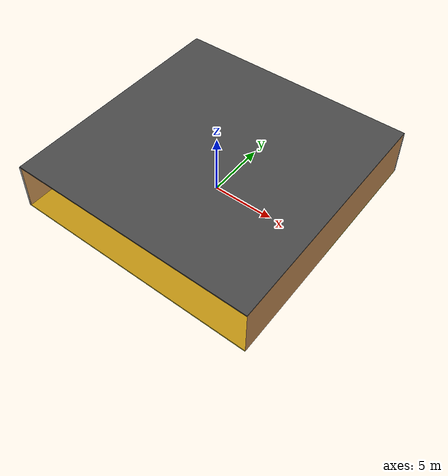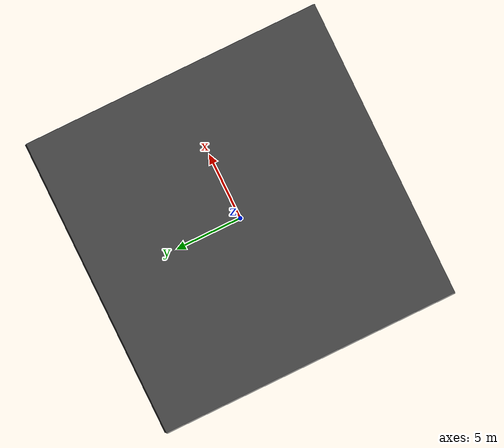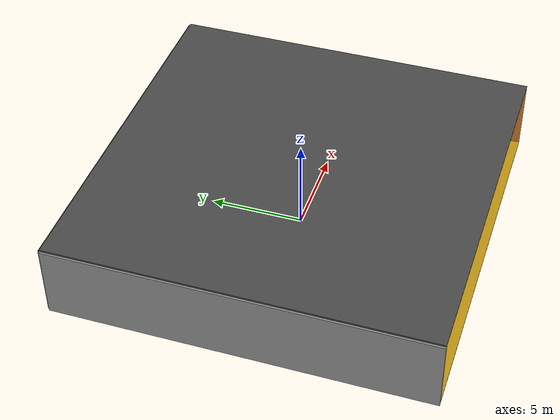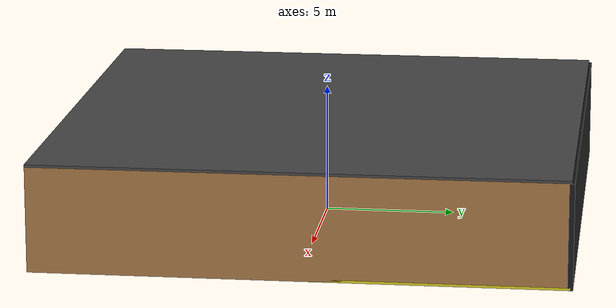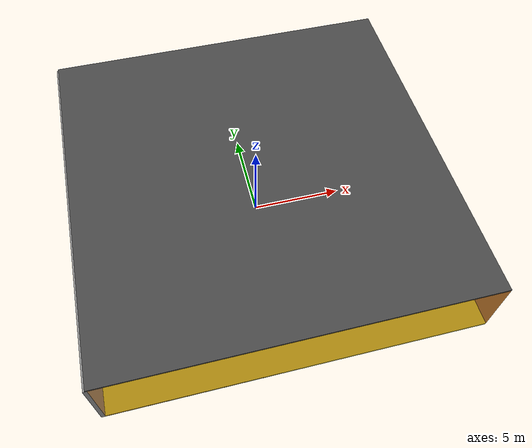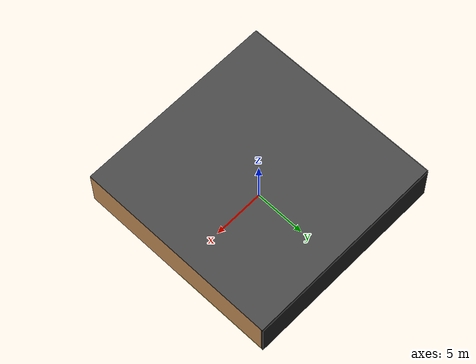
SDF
<sdf version="1.4">
 <world name="default">
  <physics type="ode">
   <max_step_size>0.001</max_step_size>
   <real_time_factor>1</real_time_factor>
   <real_time_update_rate>1000</real_time_update_rate>
   <gravity>0 0 -9.8</gravity>
  </physics>
  <scene><ambient>0.4 0.4 0.4 1</ambient><background>0.7 0.7 0.7 1</background><shadows>1</shadows></scene>
  <model name="Surrounding">
   <static>1</static>
   <link name="Ceiling">
    <collision name="Ceiling_Collision"><geometry><box><size>20 20 0.1</size></box></geometry></collision>
    <visual name="Ceiling_Visual">
     <geometry><box><size>20 20 0.1</size></box></geometry>
     <material>
      <script><uri>file://media/materials/scripts/gazebo.material</uri><name>Gazebo/DarkGrey</name></script>
     </material>
    </visual>
    <pose>0 0 4.05 0 0 0</pose>
   </link>
   <link name="Wall_South">
    <collision name="Wall_South_Collision">
     <geometry><box><size>20 0 4</size></box></geometry>
     <pose>0 0 2 0 -0 0</pose>
    </collision>
    <visual name="Wall_South_Visual">
     <pose>0 0 2 0 -0 0</pose>
     <geometry><box><size>20 0 4</size></box></geometry>
     <material>
      <script>
       <uri>file://media/materials/scripts/gazebo.material</uri>
       <name>Gazebo/OrangeTransparent</name>
      </script>
     </material>
    </visual>
    <velocity_decay><linear>0</linear><angular>0</angular></velocity_decay>
    <pose>0 -10 0 0 -0 0</pose>
   </link>
   <link name="Wall_East">
    <collision name="Wall_21_Collision">
     <geometry><box><size>20 0 4</size></box></geometry>
     <pose>0 0 2 0 -0 0</pose>
    </collision>
    <visual name="Wall_21_Visual">
     <pose>0 0 2 0 -0 0</pose>
     <geometry><box><size>20 0 4</size></box></geometry>
     <material>
      <script><uri>file://media/materials/scripts/gazebo.material</uri><name>Gazebo/WoodPallet</name></script>
     </material>
    </visual>
    <velocity_decay><linear>0</linear><angular>0</angular></velocity_decay>
    <pose>10 0 0 0 -0 1.5708</pose>
   </link>
   <link name="Wall_North">
    <collision name="Wall_22_Collision">
     <geometry><box><size>20 0.2 4</size></box></geometry>
     <pose>0 0 2 0 -0 0</pose>
    </collision>
    <visual name="Wall_22_Visual">
     <pose>0 0 2 0 -0 0</pose>
     <geometry><box><size>20 0.2 4</size></box></geometry>
     <material>
      <script><uri>file://media/materials/scripts/gazebo.material</uri><name>Gazebo/Black</name></script>
     </material>
    </visual>
    <velocity_decay><linear>0</linear><angular>0</angular></velocity_decay>
    <pose>0 10 0 0 -0 0</pose>
   </link>
   <link name="Wall_West">
    <collision name="Wall_23_Collision">
     <geometry><box><size>20 0.2 4</size></box></geometry>
     <pose>0 0 2 0 -0 0</pose>
    </collision>
    <visual name="Wall_23_Visual">
     <pose>0 0 2 0 -0 0</pose>
     <geometry><box><size>20 0.2 4</size></box></geometry>
     <material>
      <script><uri>file://media/materials/scripts/gazebo.material</uri><name>Gazebo/Grey</name></script>
     </material>
    </visual>
    <velocity_decay><linear>0</linear><angular>0</angular></velocity_decay>
    <pose>-10 0 0 0 0 -1.5708</pose>
   </link>
   <link name="Ground_link">
    <collision name="collision">
     <pose>0 0 .05 0 -0 0</pose>
     <geometry><box><size>20 20 0.1</size></box></geometry>
    </collision>
    <visual name="visual">
     <pose>0 0 .05 0 -0 0</pose>
     <geometry><box><size>20 20 0.1</size></box></geometry>
     <material>
      <script><uri>file://media/materials/scripts/gazebo.material</uri><name>Gazebo/Yellow</name></script>
     </material>
    </visual>
   </link>
   <static>1</static>
  </model>
  <spherical_coordinates>
   <surface_model>EARTH_WGS84</surface_model>
   <latitude_deg>0</latitude_deg>
   <longitude_deg>0</longitude_deg>
   <elevation>0</elevation>
   <heading_deg>0</heading_deg>
  </spherical_coordinates>
  <light name="lightball_0" type="diffuse">
   <diffuse>0.8 0.8 0.8 1</diffuse>
   <specular>0.2 0.2 0.2 1</specular>
   <attenuation>
    <range>100</range>
    <constant>0.7</constant>
    <linear>0.01</linear>
    <quadratic>0.001</quadratic>
   </attenuation>
   <direction>-0.5 0.1 -0.9</direction>
   <pose>-6.50652014906 -8.2845147694 3.37497500309 0 0 0</pose>
  </light>
  <light name="lightball_1" type="diffuse">
   <diffuse>0.8 0.8 0.8 1</diffuse>
   <specular>0.2 0.2 0.2 1</specular>
   <attenuation>
    <range>100</range>
    <constant>0.7</constant>
    <linear>0.01</linear>
    <quadratic>0.001</quadratic>
   </attenuation>
   <direction>-0.5 0.1 -0.9</direction>
   <pose>-7.29154338241 -5.59549850908 1.78336800229 0 0 0</pose>
  </light>
  <light name="lightball_2" type="diffuse">
   <diffuse>0.8 0.8 0.8 1</diffuse>
   <specular>0.2 0.2 0.2 1</specular>
   <attenuation>
    <range>100</range>
    <constant>0.7</constant>
    <linear>0.01</linear>
    <quadratic>0.001</quadratic>
   </attenuation>
   <direction>-0.5 0.1 -0.9</direction>
   <pose>9.59259451905 1.66989332023 3.5223220656 0 0 0</pose>
  </light>
  <light name="lightball_3" type="diffuse">
   <diffuse>0.8 0.8 0.8 1</diffuse>
   <specular>0.2 0.2 0.2 1</specular>
   <attenuation>
    <range>100</range>
    <constant>0.7</constant>
    <linear>0.01</linear>
    <quadratic>0.001</quadratic>
   </attenuation>
   <direction>-0.5 0.1 -0.9</direction>
   <pose>1.82961315115 7.67548273522 0.69595505541 0 0 0</pose>
  </light>
  <light name="lightball_4" type="diffuse">
   <diffuse>0.8 0.8 0.8 1</diffuse>
   <specular>0.2 0.2 0.2 1</specular>
   <attenuation>
    <range>100</range>
    <constant>0.7</constant>
    <linear>0.01</linear>
    <quadratic>0.001</quadratic>
   </attenuation>
   <direction>-0.5 0.1 -0.9</direction>
   <pose>2.12658770777 -4.14086529866 2.65414830989 0 0 0</pose>
  </light>
  <light name="lightball_5" type="diffuse">
   <diffuse>0.8 0.8 0.8 1</diffuse>
   <specular>0.2 0.2 0.2 1</specular>
   <attenuation>
    <range>100</range>
    <constant>0.7</constant>
    <linear>0.01</linear>
    <quadratic>0.001</quadratic>
   </attenuation>
   <direction>-0.5 0.1 -0.9</direction>
   <pose>5.14593592658 8.64537085771 1.26262068492 0 0 0</pose>
  </light>
  <light name="lightball_6" type="diffuse">
   <diffuse>0.8 0.8 0.8 1</diffuse>
   <specular>0.2 0.2 0.2 1</specular>
   <attenuation>
    <range>100</range>
    <constant>0.7</constant>
    <linear>0.01</linear>
    <quadratic>0.001</quadratic>
   </attenuation>
   <direction>-0.5 0.1 -0.9</direction>
   <pose>-0.203051433288 8.33700694688 3.11445148527 0 0 0</pose>
  </light>
  <light name="lightball_7" type="diffuse">
   <diffuse>0.8 0.8 0.8 1</diffuse>
   <specular>0.2 0.2 0.2 1</specular>
   <attenuation>
    <range>100</range>
    <constant>0.7</constant>
    <linear>0.01</linear>
    <quadratic>0.001</quadratic>
   </attenuation>
   <direction>-0.5 0.1 -0.9</direction>
   <pose>6.12760891448 9.51713039501 1.58418428032 0 0 0</pose>
  </light>
  <light name="lightball_8" type="diffuse">
   <diffuse>0.8 0.8 0.8 1</diffuse>
   <specular>0.2 0.2 0.2 1</specular>
   <attenuation>
    <range>100</range>
    <constant>0.7</constant>
    <linear>0.01</linear>
    <quadratic>0.001</quadratic>
   </attenuation>
   <direction>-0.5 0.1 -0.9</direction>
   <pose>-7.83294923828 -8.01579270676 1.35529472022 0 0 0</pose>
  </light>
  <light name="lightball_9" type="diffuse">
   <diffuse>0.8 0.8 0.8 1</diffuse>
   <specular>0.2 0.2 0.2 1</specular>
   <attenuation>
    <range>100</range>
    <constant>0.7</constant>
    <linear>0.01</linear>
    <quadratic>0.001</quadratic>
   </attenuation>
   <direction>-0.5 0.1 -0.9</direction>
   <pose>3.3715502861 -0.938587595957 3.45811030733 0 0 0</pose>
  </light>
  <include><uri>model://cabinet</uri><pose>-8.42441849845 3.32208731031 0 0 0 0.907002146369</pose></include>
  <include>
   <uri>model://construction_cone</uri>
   <pose>3.50917620084 0.825705982715 0 0 0 1.08355189449</pose>
  </include>
  <include><uri>model://cabinet</uri><pose>3.48773045439 8.62084431538 0 0 0 2.90363848855</pose></include>
  <include>
   <uri>model://robocup_3Dsim_goal</uri>
   <pose>8.21208306971 1.51543397599 0 0 0 0.399624393309</pose>
  </include>
 </world>
</sdf>

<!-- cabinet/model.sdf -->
<sdf version="1.5">
  <model name="cabinet">
    <static>true</static>
    <link name="cabinet_bottom_plate">
      <inertial>
        <pose>0 0 -1 0 0 0</pose>
        <inertia>
          <ixx>2.050000</ixx>
          <ixy>0</ixy>
          <ixz>0</ixz>
          <iyy>2.050000</iyy>
          <iyz>0</iyz>
          <izz>2.050000</izz>
        </inertia>
        <mass>25.000000</mass>
      </inertial>
      <collision name="cabinet_bottom_plate_geom">
        <pose>0 0 0.010000 0 0 0</pose>
        <geometry>
          <box>
            <size>0.450000 0.450000 0.020000</size>
          </box>
        </geometry>
      </collision>
      <visual name="cabinet_bottom_plate_geom_visual">
        <pose>0 0 0.010000 0 0 0</pose>
        <geometry>
          <box>
            <size>0.450000 0.450000 0.020000</size>
          </box>
        </geometry>
        <material>
          <script>
            <uri>model://media/materials/scripts/gazebo.material</uri>
            <name>Gazebo/Wood</name>
          </script>
        </material>
      </visual>
      <collision name="cabinet_bottom_plate_geom_cabinet_back_plate">
        <pose>0.235000 0 0.510000 0 0 0</pose>
        <geometry>
          <box>
            <size>0.020000 0.450000 1.020000</size>
          </box>
        </geometry>
      </collision>
      <visual name="cabinet_bottom_plate_geom_cabinet_back_plate_visual">
        <pose>0.235000 0 0.510000 0 0 0</pose>
        <geometry>
          <box>
            <size>0.020000 0.450000 1.020000</size>
          </box>
        </geometry>
        <material>
          <script>
            <uri>model://media/materials/scripts/gazebo.material</uri>
            <name>Gazebo/Wood</name>
          </script>
        </material>
      </visual>
      <collision name="cabinet_bottom_plate_geom_cabinet_left_plate">
        <pose>0 0.235000 0.510000 0 0 0</pose>
        <geometry>
          <box>
            <size>0.450000 0.020000 1.020000</size>
          </box>
        </geometry>
      </collision>
      <visual name="cabinet_bottom_plate_geom_cabinet_left_plate_visual">
        <pose>0 0.235000 0.510000 0 0 0</pose>
        <geometry>
          <box>
            <size>0.450000 0.020000 1.020000</size>
          </box>
        </geometry>
        <material>
          <script>
            <uri>model://media/materials/scripts/gazebo.material</uri>
            <name>Gazebo/Wood</name>
          </script>
        </material>
      </visual>
      <collision name="cabinet_bottom_plate_geom_cabinet_middle_plate">
        <pose>0 0 0.510000 0 0 0</pose>
        <geometry>
          <box>
            <size>0.450000 0.450000 0.020000</size>
          </box>
        </geometry>
      </collision>
      <visual name="cabinet_bottom_plate_geom_cabinet_middle_plate_visual">
        <pose>0 0 0.510000 0 0 0</pose>
        <geometry>
          <box>
            <size>0.450000 0.450000 0.020000</size>
          </box>
        </geometry>
        <material>
          <script>
            <uri>model://media/materials/scripts/gazebo.material</uri>
            <name>Gazebo/Wood</name>
          </script>
        </material>
      </visual>
      <collision name="cabinet_bottom_plate_geom_cabinet_right_plate">
        <pose>0 -0.235000 0.510000 0 0 0</pose>
        <geometry>
          <box>
            <size>0.450000 0.020000 1.020000</size>
          </box>
        </geometry>
      </collision>
      <visual name="cabinet_bottom_plate_geom_cabinet_right_plate_visual">
        <pose>0 -0.235000 0.510000 0 0 0</pose>
        <geometry>
          <box>
            <size>0.450000 0.020000 1.020000</size>
          </box>
        </geometry>
        <material>
          <script>
            <uri>model://media/materials/scripts/gazebo.material</uri>
            <name>Gazebo/Wood</name>
          </script>
        </material>
      </visual>
      <collision name="cabinet_bottom_plate_geom_cabinet_top_plate">
        <pose>0 0 1.010000 0 0 0</pose>
        <geometry>
          <box>
            <size>0.450000 0.450000 0.020000</size>
          </box>
        </geometry>
      </collision>
      <visual name="cabinet_bottom_plate_geom_cabinet_top_plate_visual">
        <pose>0 0 1.010000 0 0 0</pose>
        <geometry>
          <box>
            <size>0.450000 0.450000 0.020000</size>
          </box>
        </geometry>
        <material>
          <script>
            <uri>model://media/materials/scripts/gazebo.material</uri>
            <name>Gazebo/Wood</name>
          </script>
        </material>
      </visual>
    </link>
  </model>
</sdf>

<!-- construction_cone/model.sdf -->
<sdf version="1.5">
  <model name="Construction Cone">
    <link name="link">
      <collision name="collision">
        <geometry>
          <mesh>
            <scale>10 10 10</scale>
            <uri>file://isr-testbed/construction_cone/meshes/construction_cone.dae</uri>
          </mesh>
        </geometry>
      </collision>
      <visual name="visual">
        <geometry>
          <mesh>
            <scale>10 10 10</scale>
            <uri>file://isr-testbed/construction_cone/meshes/construction_cone.dae</uri>
          </mesh>
        </geometry>
      </visual>
    </link>
  </model>
</sdf>

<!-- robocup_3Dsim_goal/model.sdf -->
<sdf version="1.5">
  <model name="robocup_3d_goal">
    <static>true</static>
    <link name="left_post">
      <pose>0 1.05 0.45 0 0 0</pose>
      <collision name="collision">
        <geometry>
          <cylinder>
            <radius>0.05</radius>
            <length>0.9</length>
          </cylinder>
        </geometry>
      </collision>
      <visual name="visual">
        <geometry>
          <cylinder>
            <radius>0.05</radius>
            <length>0.9</length>
          </cylinder>
        </geometry>
        <material>
          <script>
            <uri>file://media/materials/scripts/gazebo.material</uri>
            <name>Gazebo/ZincYellow</name>
          </script>
        </material>
      </visual>
    </link>
    <link name="left_support_horiz_lower">
      <pose>0.30 1.05 0.01 0 0 0</pose>
      <collision name="collision">
        <geometry>
          <box>
            <size>0.50 0.02 0.02</size>
          </box>
        </geometry>
      </collision>
      <visual name="visual">
        <geometry>
          <box>
            <size>0.50 0.02 0.02</size>
          </box>
        </geometry>
        <material>
          <script>
            <uri>file://media/materials/scripts/gazebo.material</uri>
            <name>Gazebo/White</name>
          </script>
        </material>
      </visual>
    </link>
    <link name="left_support_horiz_upper">
      <pose>0.30 1.05 0.79 0 0 0</pose>
      <collision name="collision">
        <geometry>
          <box>
            <size>0.50 0.02 0.02</size>
          </box>
        </geometry>
      </collision>
      <visual name="visual">
        <geometry>
          <box>
            <size>0.50 0.02 0.02</size>
          </box>
        </geometry>
        <material>
          <script>
            <uri>file://media/materials/scripts/gazebo.material</uri>
            <name>Gazebo/White</name>
          </script>
        </material>
      </visual>
    </link>
    <link name="left_support_vertical">
      <pose>0.56 1.05 0.4 0 1.5708 0</pose>
      <collision name="collision">
        <geometry>
          <box>
            <size>0.80 0.02 0.02</size>
          </box>
        </geometry>
      </collision>
      <visual name="visual">
        <geometry>
          <box>
            <size>0.80 0.02 0.02</size>
          </box>
        </geometry>
        <material>
          <script>
            <uri>file://media/materials/scripts/gazebo.material</uri>
            <name>Gazebo/White</name>
          </script>
        </material>
      </visual>
    </link>
    <link name="right_support_horiz_lower">
      <pose>0.30 -1.05 0.01 0 0 0</pose>
      <collision name="collision">
        <geometry>
          <box>
            <size>0.50 0.02 0.02</size>
          </box>
        </geometry>
      </collision>
      <visual name="visual">
        <geometry>
          <box>
            <size>0.50 0.02 0.02</size>
          </box>
        </geometry>
        <material>
          <script>
            <uri>file://media/materials/scripts/gazebo.material</uri>
            <name>Gazebo/White</name>
          </script>
        </material>
      </visual>
    </link>
    <link name="right_support_horiz_upper">
      <pose>0.30 -1.05 0.79 0 0 0</pose>
      <collision name="collision">
        <geometry>
          <box>
            <size>0.50 0.02 0.02</size>
          </box>
        </geometry>
      </collision>
      <visual name="visual">
        <geometry>
          <box>
            <size>0.50 0.02 0.02</size>
          </box>
        </geometry>
        <material>
          <script>
            <uri>file://media/materials/scripts/gazebo.material</uri>
            <name>Gazebo/White</name>
          </script>
        </material>
      </visual>
    </link>
    <link name="right_support_vertical">
      <pose>0.56 -1.05 0.4 0 1.5708 0</pose>
      <collision name="collision">
        <geometry>
          <box>
            <size>0.80 0.02 0.02</size>
          </box>
        </geometry>
      </collision>
      <visual name="visual">
        <geometry>
          <box>
            <size>0.80 0.02 0.02</size>
          </box>
        </geometry>
        <material>
          <script>
            <uri>file://media/materials/scripts/gazebo.material</uri>
            <name>Gazebo/White</name>
          </script>
        </material>
      </visual>
    </link>
    <link name="center_support_horiz_lower">
      <pose>0.56 0 0.01 0 1.5708 0</pose>
      <collision name="collision">
        <geometry>
          <box>
            <size>0.02 2.08 0.02</size>
          </box>
        </geometry>
      </collision>
      <visual name="visual">
        <geometry>
          <box>
            <size>0.02 2.08 0.02</size>
          </box>
        </geometry>
        <material>
          <script>
            <uri>file://media/materials/scripts/gazebo.material</uri>
            <name>Gazebo/White</name>
          </script>
        </material>
      </visual>
    </link>
    <link name="center_support_horiz_upper">
      <pose>0.56 0 0.79 0 1.5708 0</pose>
      <collision name="collision">
        <geometry>
          <box>
            <size>0.02 2.08 0.02</size>
          </box>
        </geometry>
      </collision>
      <visual name="visual">
        <geometry>
          <box>
            <size>0.02 2.08 0.02</size>
          </box>
        </geometry>
        <material>
          <script>
            <uri>file://media/materials/scripts/gazebo.material</uri>
            <name>Gazebo/White</name>
          </script>
        </material>
      </visual>
    </link>
    <link name="right_post">
      <pose>0 -1.05 0.45 0 0 0</pose>
      <collision name="collision">
        <geometry>
          <cylinder>
            <radius>0.05</radius>
            <length>0.9</length>
          </cylinder>
        </geometry>
      </collision>
      <visual name="visual">
        <geometry>
          <cylinder>
            <radius>0.05</radius>
            <length>0.9</length>
          </cylinder>
        </geometry>
        <material>
          <script>
            <uri>file://media/materials/scripts/gazebo.material</uri>
            <name>Gazebo/ZincYellow</name>
          </script>
        </material>
      </visual>
    </link>
    <link name="crossbar">
      <pose>0 0 0.85 1.57 1.57 0</pose>
      <collision name="collision">
        <geometry>
          <cylinder>
            <radius>0.05</radius>
            <length>2.0</length>
          </cylinder>
        </geometry>
      </collision>
      <visual name="visual">
        <geometry>
          <cylinder>
            <radius>0.05</radius>
            <length>2.0</length>
          </cylinder>
        </geometry>
        <material>
          <script>
            <uri>file://media/materials/scripts/gazebo.material</uri>
            <name>Gazebo/ZincYellow</name>
          </script>
        </material>
      </visual>
    </link>
    <link name="center_net">
      <pose>0.56 0 0.40 0 0 0</pose>
      <collision name="collision">
        <geometry>
          <box>
            <size>0.01 2.1 0.80</size>
          </box>
        </geometry>
      </collision>
      <visual name="visual">
        <geometry>
          <box>
            <size>0.01 2.1 0.80</size>
          </box>
        </geometry>
        <material>
          <script>
            <uri>model://../model_source/models/robocup09_spl_field/materials/scripts/</uri>
            <uri>model://../model_source/models/robocup09_spl_field/materials/textures/</uri>
            <name>RoboCup/Net</name>
          </script>
        </material>
      </visual>
    </link>
    <link name="left_net">
      <pose>0.30 1.05 0.40 0 0 0</pose>
      <collision name="collision">
        <geometry>
          <box>
            <size>0.50 0.01 0.76</size>
          </box>
        </geometry>
      </collision>
      <visual name="visual">
        <geometry>
          <box>
            <size>0.50 0.01 0.76</size>
          </box>
        </geometry>
        <material>
          <script>
            <uri>model://../model_source/models/robocup09_spl_field/materials/scripts/</uri>
            <uri>model://../model_source/models/robocup09_spl_field/materials/textures/</uri>
            <name>RoboCup/Net</name>
          </script>
        </material>
      </visual>
    </link>
    <link name="right_net">
      <pose>0.30 -1.05 0.40 0 0 0</pose>
      <collision name="collision">
        <geometry>
          <box>
            <size>0.50 0.01 0.76</size>
          </box>
        </geometry>
      </collision>
      <visual name="visual">
        <geometry>
          <box>
            <size>0.50 0.01 0.76</size>
          </box>
        </geometry>
        <material>
          <script>
            <uri>model://../model_source/models/robocup09_spl_field/materials/scripts/</uri>
            <uri>model://../model_source/models/robocup09_spl_field/materials/textures/</uri>
            <name>RoboCup/Net</name>
          </script>
        </material>
      </visual>
    </link>
  </model>
</sdf>
